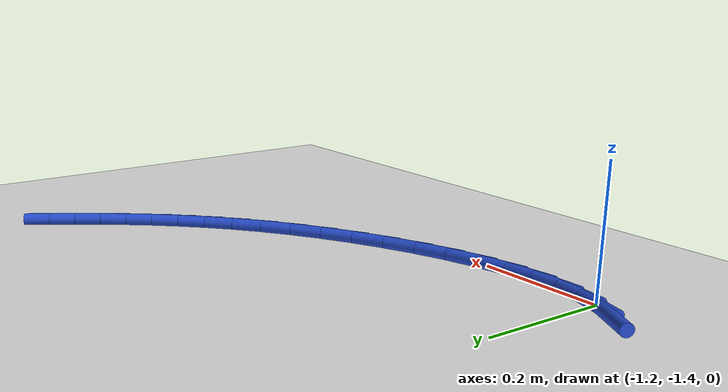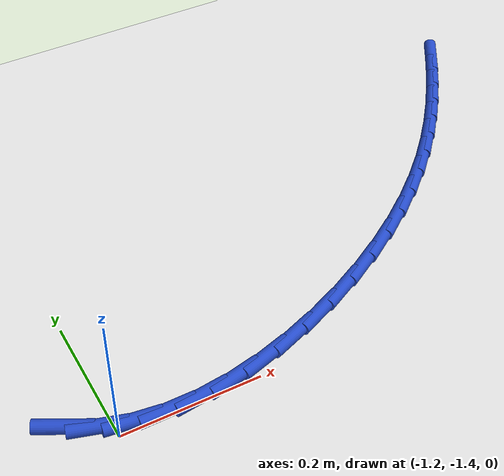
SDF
<sdf version="1.6">
 <world name="default">
  <model name="ground_plane">
   <static>1</static>
   <link name="link">
    <collision name="collision">
     <geometry><plane><normal>0 0 1</normal><size>100 100</size></plane></geometry>
     <surface><friction><ode><mu>100</mu><mu2>50</mu2></ode></friction></surface>
    </collision>
    <visual name="visual">
     <cast_shadows>0</cast_shadows>
     <geometry><plane><normal>0 0 1</normal><size>100 100</size></plane></geometry>
     <material>
      <script><uri>file://media/materials/scripts/gazebo.material</uri><name>Gazebo/WhiteGlow</name></script>
     </material>
    </visual>
   </link>
  </model>
  <model name="line">
   <link name="link_126">
    <pose>-1.2571287097127122 -1.3596383125256282 0.01 0 1.57 -0.49363835453571875</pose>
    <collision name="collision">
     <geometry><cylinder><radius>0.01</radius><length>0.08</length></cylinder></geometry>
    </collision>
    <visual name="visual">
     <material>
      <script><name>Gazebo/Blue</name><uri>file://media/materials/scripts/gazebo.material</uri></script>
     </material>
     <geometry><cylinder><radius>0.01</radius><length>0.08</length></cylinder></geometry>
    </visual>
   </link>
   <link name="link_127">
    <pose>-1.2194572370464076 -1.3799082293832183 0.01 0 1.57 -0.2977918264791374</pose>
    <collision name="collision">
     <geometry><cylinder><radius>0.01</radius><length>0.08</length></cylinder></geometry>
    </collision>
    <visual name="visual">
     <material>
      <script><name>Gazebo/Blue</name><uri>file://media/materials/scripts/gazebo.material</uri></script>
     </material>
     <geometry><cylinder><radius>0.01</radius><length>0.08</length></cylinder></geometry>
    </visual>
   </link>
   <link name="link_128">
    <pose>-1.1776734907148882 -1.3927324310383407 0.01 0 1.57 -0.13098342933351403</pose>
    <collision name="collision">
     <geometry><cylinder><radius>0.01</radius><length>0.08</length></cylinder></geometry>
    </collision>
    <visual name="visual">
     <material>
      <script><name>Gazebo/Blue</name><uri>file://media/materials/scripts/gazebo.material</uri></script>
     </material>
     <geometry><cylinder><radius>0.01</radius><length>0.08</length></cylinder></geometry>
    </visual>
   </link>
   <link name="link_129">
    <pose>-1.1324793094474235 -1.3986862078673197 0.01 0 1.57 0.0071259300796579425</pose>
    <collision name="collision">
     <geometry><cylinder><radius>0.01</radius><length>0.08</length></cylinder></geometry>
    </collision>
    <visual name="visual">
     <material>
      <script><name>Gazebo/Blue</name><uri>file://media/materials/scripts/gazebo.material</uri></script>
     </material>
     <geometry><cylinder><radius>0.01</radius><length>0.08</length></cylinder></geometry>
    </visual>
   </link>
   <link name="link_130">
    <pose>-1.0845765319732827 -1.3983448502464788 0.01 0 1.57 0.1208519491728965</pose>
    <collision name="collision">
     <geometry><cylinder><radius>0.01</radius><length>0.08</length></cylinder></geometry>
    </collision>
    <visual name="visual">
     <material>
      <script><name>Gazebo/Blue</name><uri>file://media/materials/scripts/gazebo.material</uri></script>
     </material>
     <geometry><cylinder><radius>0.01</radius><length>0.08</length></cylinder></geometry>
    </visual>
   </link>
   <link name="link_131">
    <pose>-1.0346669970217344 -1.3922836485521424 0.01 0 1.57 0.21540602934006176</pose>
    <collision name="collision">
     <geometry><cylinder><radius>0.01</radius><length>0.08</length></cylinder></geometry>
    </collision>
    <visual name="visual">
     <material>
      <script><name>Gazebo/Blue</name><uri>file://media/materials/scripts/gazebo.material</uri></script>
     </material>
     <geometry><cylinder><radius>0.01</radius><length>0.08</length></cylinder></geometry>
    </visual>
   </link>
   <link name="link_132">
    <pose>-0.9834525433220497 -1.381077893160635 0.01 0 1.57 0.2955196976213154</pose>
    <collision name="collision">
     <geometry><cylinder><radius>0.01</radius><length>0.08</length></cylinder></geometry>
    </collision>
    <visual name="visual">
     <material>
      <script><name>Gazebo/Blue</name><uri>file://media/materials/scripts/gazebo.material</uri></script>
     </material>
     <geometry><cylinder><radius>0.01</radius><length>0.08</length></cylinder></geometry>
    </visual>
   </link>
   <link name="link_133">
    <pose>-0.9316350096034971 -1.3653028744482802 0.01 0 1.57 0.3651030299692872</pose>
    <collision name="collision">
     <geometry><cylinder><radius>0.01</radius><length>0.08</length></cylinder></geometry>
    </collision>
    <visual name="visual">
     <material>
      <script><name>Gazebo/Blue</name><uri>file://media/materials/scripts/gazebo.material</uri></script>
     </material>
     <geometry><cylinder><radius>0.01</radius><length>0.08</length></cylinder></geometry>
    </visual>
   </link>
   <link name="link_134">
    <pose>-0.8799162345953464 -1.3455338827914025 0.01 0 1.57 0.4273279394461543</pose>
    <collision name="collision">
     <geometry><cylinder><radius>0.01</radius><length>0.08</length></cylinder></geometry>
    </collision>
    <visual name="visual">
     <material>
      <script><name>Gazebo/Blue</name><uri>file://media/materials/scripts/gazebo.material</uri></script>
     </material>
     <geometry><cylinder><radius>0.01</radius><length>0.08</length></cylinder></geometry>
    </visual>
   </link>
   <link name="link_135">
    <pose>-0.8289980570268664 -1.3223462085663258 0.01 0 1.57 0.4848388733235468</pose>
    <collision name="collision">
     <geometry><cylinder><radius>0.01</radius><length>0.08</length></cylinder></geometry>
    </collision>
    <visual name="visual">
     <material>
      <script><name>Gazebo/Blue</name><uri>file://media/materials/scripts/gazebo.material</uri></script>
     </material>
     <geometry><cylinder><radius>0.01</radius><length>0.08</length></cylinder></geometry>
    </visual>
   </link>
   <link name="link_136">
    <pose>-0.7795823156273256 -1.296315142149374 0.01 0 1.57 0.539987793635232</pose>
    <collision name="collision">
     <geometry><cylinder><radius>0.01</radius><length>0.08</length></cylinder></geometry>
    </collision>
    <visual name="visual">
     <material>
      <script><name>Gazebo/Blue</name><uri>file://media/materials/scripts/gazebo.material</uri></script>
     </material>
     <geometry><cylinder><radius>0.01</radius><length>0.08</length></cylinder></geometry>
    </visual>
   </link>
   <link name="link_137">
    <pose>-0.7323708491259958 -1.2680159739168715 0.01 0 1.57 0.5950797869591598</pose>
    <collision name="collision">
     <geometry><cylinder><radius>0.01</radius><length>0.08</length></cylinder></geometry>
    </collision>
    <visual name="visual">
     <material>
      <script><name>Gazebo/Blue</name><uri>file://media/materials/scripts/gazebo.material</uri></script>
     </material>
     <geometry><cylinder><radius>0.01</radius><length>0.08</length></cylinder></geometry>
    </visual>
   </link>
   <link name="link_138">
    <pose>-0.6880654588449858 -1.2380239761794805 0.01 0 1.57 0.6517918462876362</pose>
    <collision name="collision">
     <geometry><cylinder><radius>0.01</radius><length>0.08</length></cylinder></geometry>
    </collision>
    <visual name="visual">
     <material>
      <script><name>Gazebo/Blue</name><uri>file://media/materials/scripts/gazebo.material</uri></script>
     </material>
     <geometry><cylinder><radius>0.01</radius><length>0.08</length></cylinder></geometry>
    </visual>
   </link>
   <link name="link_139">
    <pose>-0.6471683574974167 -1.206818030594973 0.01 0 1.57 0.70845819316164</pose>
    <collision name="collision">
     <geometry><cylinder><radius>0.01</radius><length>0.08</length></cylinder></geometry>
    </collision>
    <visual name="visual">
     <material>
      <script><name>Gazebo/Blue</name><uri>file://media/materials/scripts/gazebo.material</uri></script>
     </material>
     <geometry><cylinder><radius>0.01</radius><length>0.08</length></cylinder></geometry>
    </visual>
   </link>
   <link name="link_140">
    <pose>-0.6095158273721468 -1.1745554099442514 0.01 0 1.57 0.763597211103461</pose>
    <collision name="collision">
     <geometry><cylinder><radius>0.01</radius><length>0.08</length></cylinder></geometry>
    </collision>
    <visual name="visual">
     <material>
      <script><name>Gazebo/Blue</name><uri>file://media/materials/scripts/gazebo.material</uri></script>
     </material>
     <geometry><cylinder><radius>0.01</radius><length>0.08</length></cylinder></geometry>
    </visual>
   </link>
   <link name="link_141">
    <pose>-0.5748054321964345 -1.1413263933416566 0.01 0 1.57 0.8161313838692045</pose>
    <collision name="collision">
     <geometry><cylinder><radius>0.01</radius><length>0.08</length></cylinder></geometry>
    </collision>
    <visual name="visual">
     <material>
      <script><name>Gazebo/Blue</name><uri>file://media/materials/scripts/gazebo.material</uri></script>
     </material>
     <geometry><cylinder><radius>0.01</radius><length>0.08</length></cylinder></geometry>
    </visual>
   </link>
   <link name="link_142">
    <pose>-0.5427347356975383 -1.1072212599015279 0.01 0 1.57 0.8650372523827496</pose>
    <collision name="collision">
     <geometry><cylinder><radius>0.01</radius><length>0.08</length></cylinder></geometry>
    </collision>
    <visual name="visual">
     <material>
      <script><name>Gazebo/Blue</name><uri>file://media/materials/scripts/gazebo.material</uri></script>
     </material>
     <geometry><cylinder><radius>0.01</radius><length>0.08</length></cylinder></geometry>
    </visual>
   </link>
   <link name="link_143">
    <pose>-0.5130013016027176 -1.0723302887382062 0.01 0 1.57 0.9093996491752795</pose>
    <collision name="collision">
     <geometry><cylinder><radius>0.01</radius><length>0.08</length></cylinder></geometry>
    </collision>
    <visual name="visual">
     <material>
      <script><name>Gazebo/Blue</name><uri>file://media/materials/scripts/gazebo.material</uri></script>
     </material>
     <geometry><cylinder><radius>0.01</radius><length>0.08</length></cylinder></geometry>
    </visual>
   </link>
   <link name="link_144">
    <pose>-0.48530269363923084 -1.0367437589660318 0.01 0 1.57 0.9484473253638969</pose>
    <collision name="collision">
     <geometry><cylinder><radius>0.01</radius><length>0.08</length></cylinder></geometry>
    </collision>
    <visual name="visual">
     <material>
      <script><name>Gazebo/Blue</name><uri>file://media/materials/scripts/gazebo.material</uri></script>
     </material>
     <geometry><cylinder><radius>0.01</radius><length>0.08</length></cylinder></geometry>
    </visual>
   </link>
   <link name="link_145">
    <pose>-0.45933647553433654 -1.000551949699344 0.01 0 1.57 0.9815677006386965</pose>
    <collision name="collision">
     <geometry><cylinder><radius>0.01</radius><length>0.08</length></cylinder></geometry>
    </collision>
    <visual name="visual">
     <material>
      <script><name>Gazebo/Blue</name><uri>file://media/materials/scripts/gazebo.material</uri></script>
     </material>
     <geometry><cylinder><radius>0.01</radius><length>0.08</length></cylinder></geometry>
    </visual>
   </link>
   <link name="link_146">
    <pose>-0.4348002110152935 -0.9638451400524833 0.01 0 1.57 1.0083034336304602</pose>
    <collision name="collision">
     <geometry><cylinder><radius>0.01</radius><length>0.08</length></cylinder></geometry>
    </collision>
    <visual name="visual">
     <material>
      <script><name>Gazebo/Blue</name><uri>file://media/materials/scripts/gazebo.material</uri></script>
     </material>
     <geometry><cylinder><radius>0.01</radius><length>0.08</length></cylinder></geometry>
    </visual>
   </link>
   <link name="link_147">
    <pose>-0.41139146380935976 -0.926713609139789 0.01 0 1.57 1.028336646381306</pose>
    <collision name="collision">
     <geometry><cylinder><radius>0.01</radius><length>0.08</length></cylinder></geometry>
    </collision>
    <visual name="visual">
     <material>
      <script><name>Gazebo/Blue</name><uri>file://media/materials/scripts/gazebo.material</uri></script>
     </material>
     <geometry><cylinder><radius>0.01</radius><length>0.08</length></cylinder></geometry>
    </visual>
   </link>
  </model>
 </world>
</sdf>
